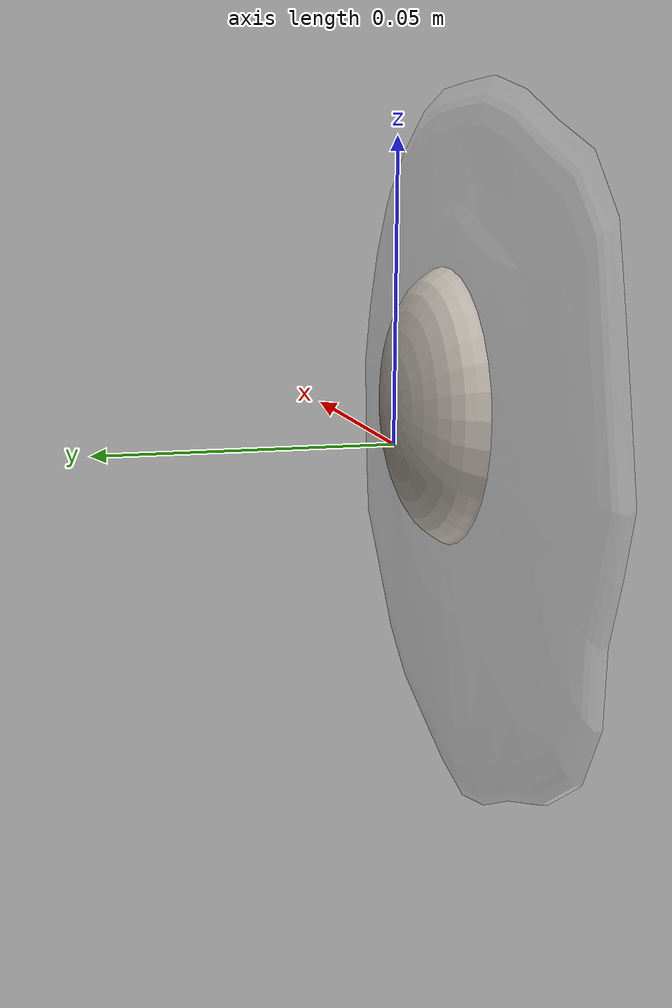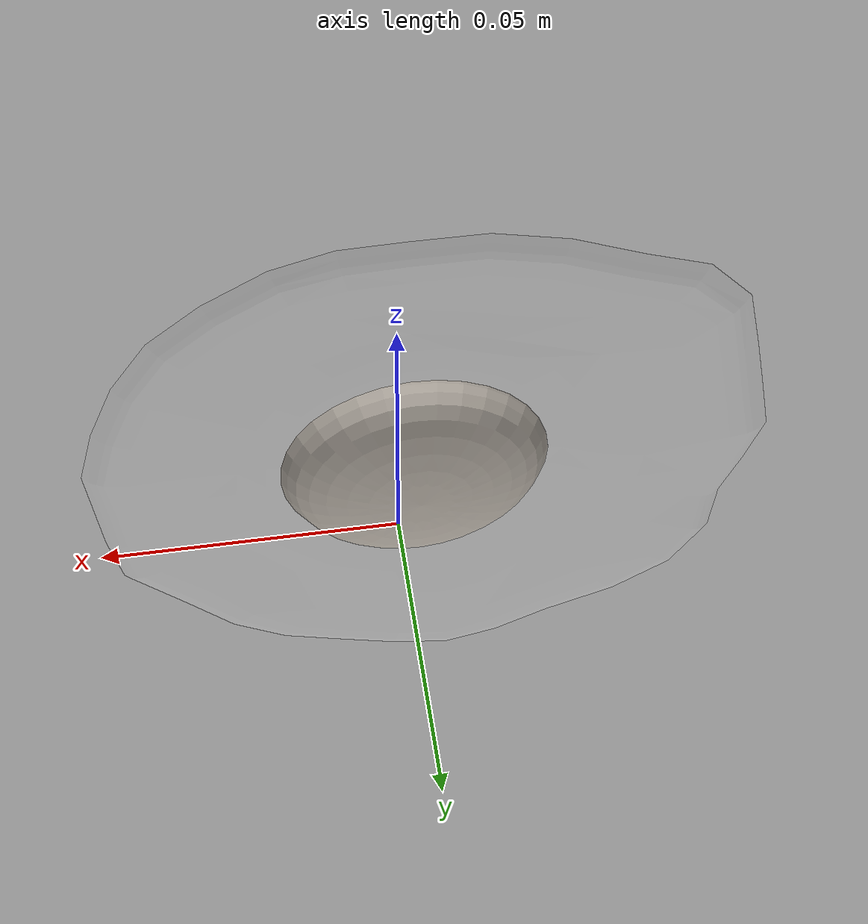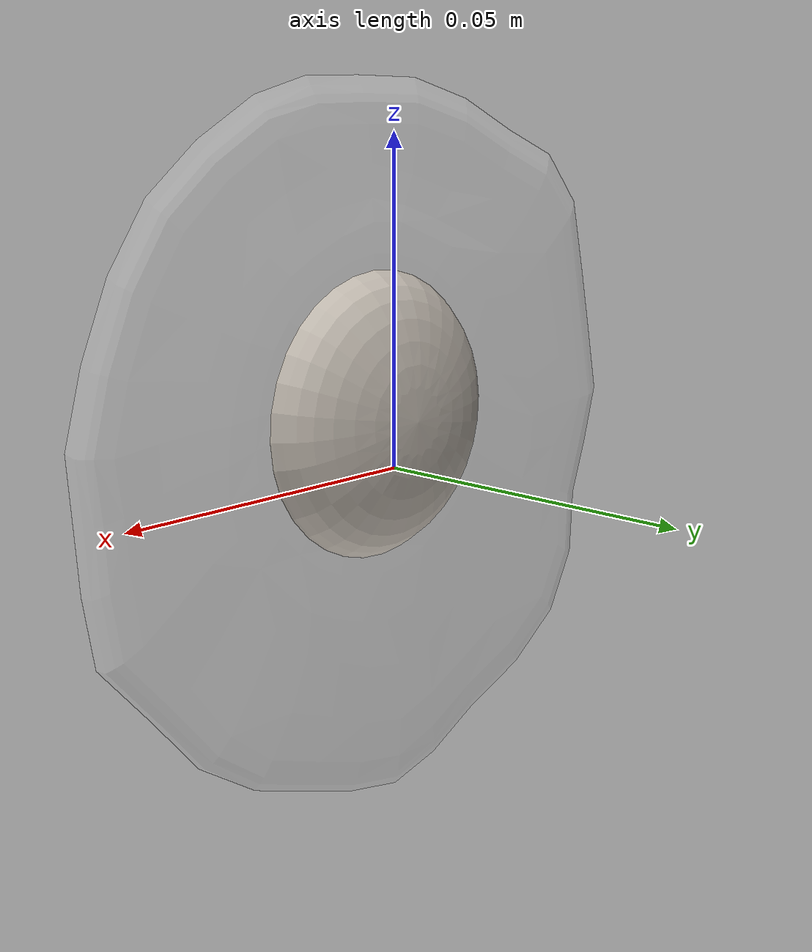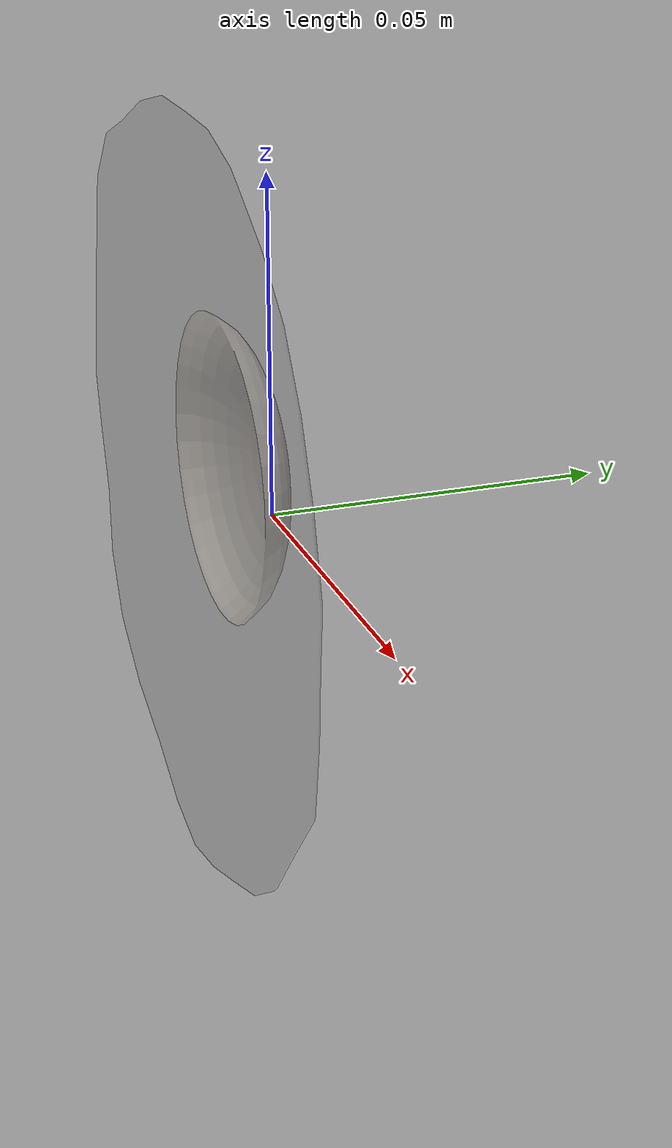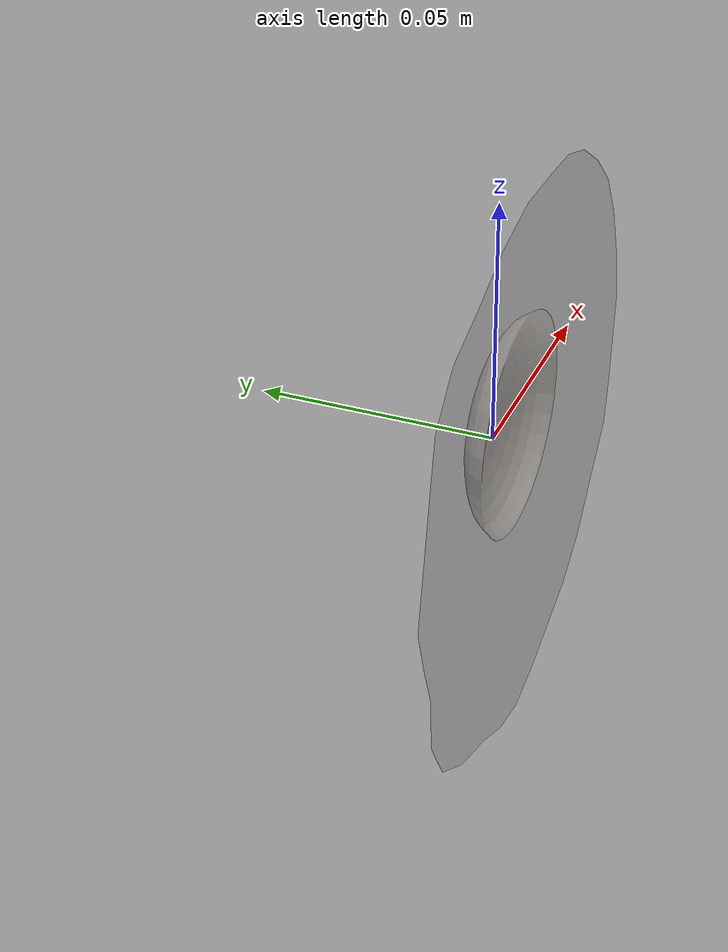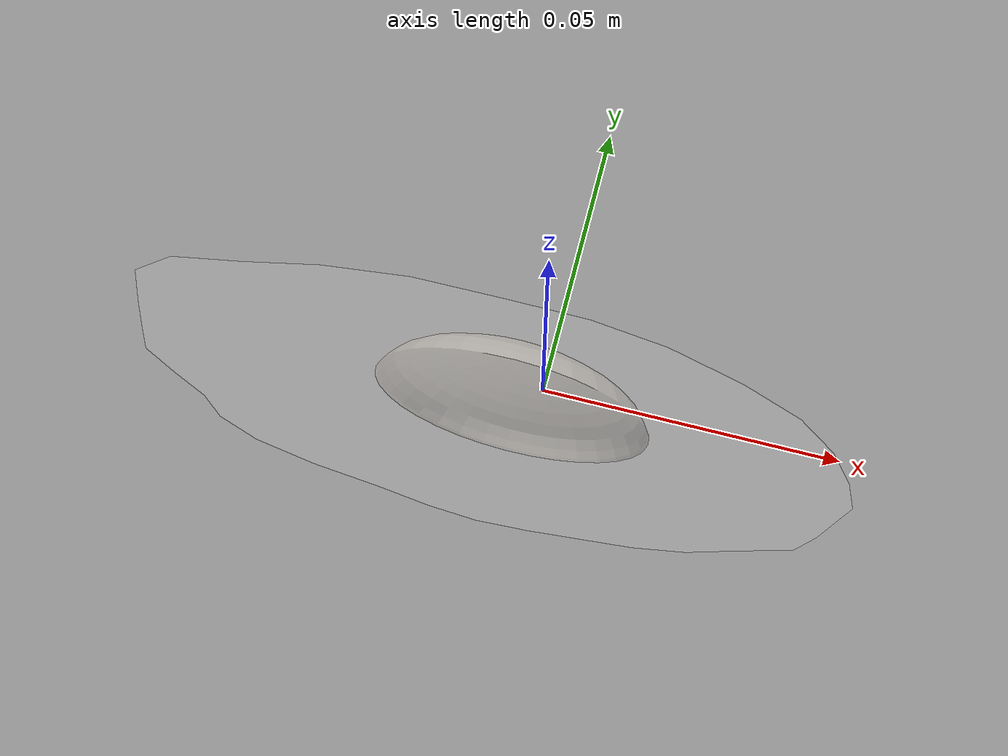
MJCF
<mujoco model="Egg_Cracked_6">
  <compiler autolimits="true" boundmass="0.01" angle="radian"/>
  <default>
    <default class="/">
      <default class="__VISUAL_MJT__">
        <geom contype="0" conaffinity="0" group="0"/>
      </default>
      <default class="__STRUCTURAL_MJT__">
        <geom contype="8" conaffinity="15" group="4" friction="0.90000000000000002 0.90000000000000002 0.001" solref="0.025000000000000001 1" solimp="0.998 0.998 0.001"/>
      </default>
      <default class="__DYNAMIC_MJT__">
        <geom contype="1" conaffinity="15" group="4" friction="0.90000000000000002 0.90000000000000002 0.001" solref="0.025000000000000001 1" solimp="0.998 0.998 0.001"/>
      </default>
    </default>
  </default>
  <asset>
    <texture name="Fried_Egg_White_Uncooked_Mat" type="2d" file="Fried_Egg_AlbedoTransparency.png"/>
    <material name="material_Fried_Egg_White_Uncooked_Mat" class="/" texture="Fried_Egg_White_Uncooked_Mat" specular="0.5" shininess="0.5" rgba="1 1 1 0.5"/>
    <texture name="Fried_Egg_Yolk_Mat" type="2d" file="Fried_Egg_AlbedoTransparency.png"/>
    <material name="material_Fried_Egg_Yolk_Mat" class="/" texture="Fried_Egg_Yolk_Mat" specular="0.5" shininess="0.5" rgba="1 1 1 1"/>
    <mesh name="Egg_Cracked_6_fried_egg_6_0" class="/" file="Egg_Cracked_6_fried_egg_6/Egg_Cracked_6_fried_egg_6_0.obj" scale="1 1 1"/>
    <mesh name="Egg_Cracked_6_fried_egg_6_1" class="/" file="Egg_Cracked_6_fried_egg_6/Egg_Cracked_6_fried_egg_6_1.obj" scale="1 1 1"/>
  </asset>
  <worldbody>
    <body name="Egg_Cracked_6">
      <joint name="Egg_Cracked_6_free" class="/" type="free" pos="0 0 0" axis="0 0 1" stiffness="0" range="0 0" armature="0" damping="0.10000000000000001" frictionloss="0"/>
      <body name="Egg_Cracked_6_fried_egg_6" pos="-0.0036900000000000001 -0.01023 0.0067600000000000004" quat="1 0 0 0">
        <geom name="Egg_Cracked_6_fried_egg_6_0" class="__VISUAL_MJT__" type="mesh" material="material_Fried_Egg_White_Uncooked_Mat" shellinertia="false" mesh="Egg_Cracked_6_fried_egg_6_0"/>
        <geom name="Egg_Cracked_6_fried_egg_6_1" class="__VISUAL_MJT__" type="mesh" material="material_Fried_Egg_Yolk_Mat" shellinertia="false" mesh="Egg_Cracked_6_fried_egg_6_1"/>
        <geom name="Egg_Cracked_6_PrimitiveCollider_0" class="__DYNAMIC_MJT__" type="box" size="0.059685852378606796 0.010231256484985352 0.059703916311264038" rgba="0 1 0 1" pos="-0.0036880709230899811 0.010231256484985352 -0.0067550837993621826" quat="1 0 0 0"/>
      </body>
    </body>
  </worldbody>
</mujoco>
